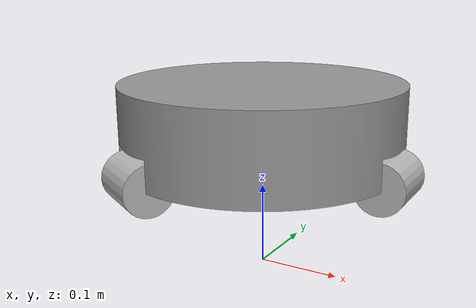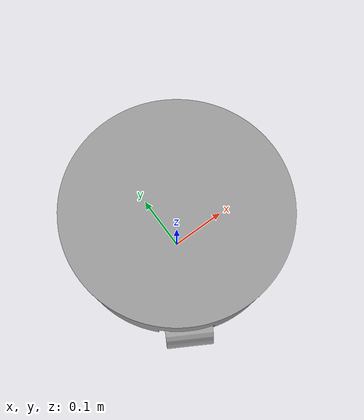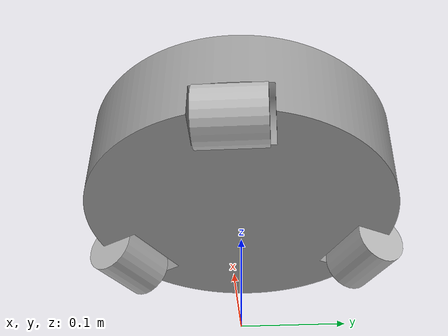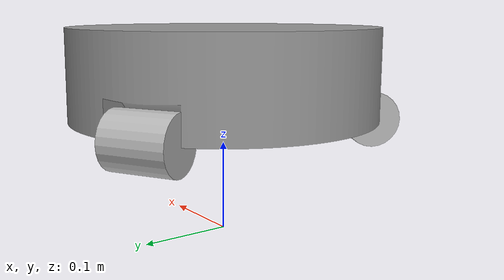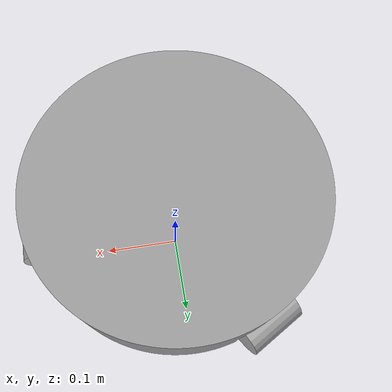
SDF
<?xml version='1.0'?>
<sdf version='1.6'>

  <model name='roomba2'>
    <static>1</static>

    <pose> 0 0 0.1 0 0 0 </pose>

    <link name='chassis'>
      <inertial>
        <mass>2.4</mass>
        <inertia>
          <ixx>0.02534</ixx>
          <ixy>0</ixy>
          <ixz>0</ixz>
          <iyy>0.02534</iyy>
          <iyz>0</iyz>
          <izz>0.03468</izz>
        </inertia>
      </inertial>
      <pose frame=''>-0 -0 0.035 0 -0 0</pose>
      <visual name='visual'>
        <pose frame=''>0 0 0 0 -0 0</pose>
        <geometry>
          <mesh>
            <uri>model://roomba2/roomba.dae</uri>
            <scale>1 1 1</scale>
          </mesh>
        </geometry>
        <material>
          <lighting>1</lighting>
          <script>
            <uri>file://media/materials/scripts/gazebo.material</uri>
            <name>Gazebo/Grey</name>
          </script>
          <shader type='pixel'/>
        </material>
        <transparency>0</transparency>
        <cast_shadows>1</cast_shadows>
      </visual>
      <collision name='collision'>
        <laser_retro>0</laser_retro>
        <max_contacts>10</max_contacts>
        <pose frame=''>0 0 0 0 -0 0</pose>
        <geometry>
          <mesh>
            <uri>model://roomba2/roomba.dae</uri>
            <scale>1 1 1</scale>
          </mesh>
        </geometry>
        <surface>
          <friction>
            <ode>
              <mu>1</mu>
              <mu2>1</mu2>
              <fdir1>0 0 0</fdir1>
              <slip1>0</slip1>
              <slip2>0</slip2>
            </ode>
            <torsional>
              <coefficient>1</coefficient>
              <patch_radius>0</patch_radius>
              <surface_radius>0</surface_radius>
              <use_patch_radius>1</use_patch_radius>
              <ode>
                <slip>0</slip>
              </ode>
            </torsional>
          </friction>
          <bounce>
            <restitution_coefficient>0</restitution_coefficient>
            <threshold>1e+06</threshold>
          </bounce>
          <contact>
            <collide_without_contact>0</collide_without_contact>
            <collide_without_contact_bitmask>1</collide_without_contact_bitmask>
            <collide_bitmask>1</collide_bitmask>
            <ode>
              <soft_cfm>0</soft_cfm>
              <soft_erp>0.2</soft_erp>
              <kp>1e+13</kp>
              <kd>1</kd>
              <max_vel>0.01</max_vel>
              <min_depth>0</min_depth>
            </ode>
            <bullet>
              <split_impulse>1</split_impulse>
              <split_impulse_penetration_threshold>-0.01</split_impulse_penetration_threshold>
              <soft_cfm>0</soft_cfm>
              <soft_erp>0.2</soft_erp>
              <kp>1e+13</kp>
              <kd>1</kd>
            </bullet>
          </contact>
        </surface>
      </collision>
    </link>

    <link name="x_wheel">

      <pose>0.16 0 0.03 1.57079 0 0</pose>

      <visual name="visual">
        <geometry>
          <cylinder>
            <radius>0.03</radius>
            <length>0.07</length>
          </cylinder>
        </geometry>
      </visual>
    </link>

    <link name="y+_wheel">

      <pose>-0.08 0.1385 0.03 1.57079 0 -1.0472</pose>

      <visual name="visual">
        <geometry>
          <cylinder>
            <radius>0.03</radius>
            <length>0.07</length>
          </cylinder>
        </geometry>
      </visual>
    </link>

    <link name="y-_wheel">

      <pose>-0.08 -0.1385 0.03 1.57079 0 1.0472</pose>

      <visual name="visual">
        <geometry>
          <cylinder>
            <radius>0.03</radius>
            <length>0.07</length>
          </cylinder>
        </geometry>
      </visual>
    </link>

    <allow_auto_disable>1</allow_auto_disable>
  </model>
</sdf>
